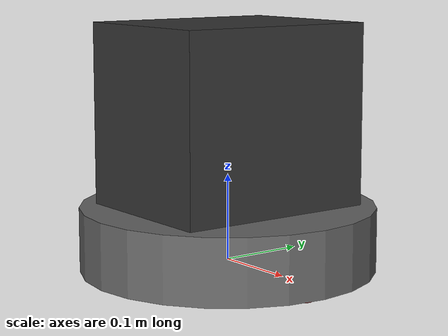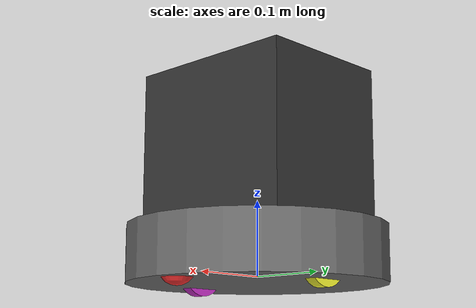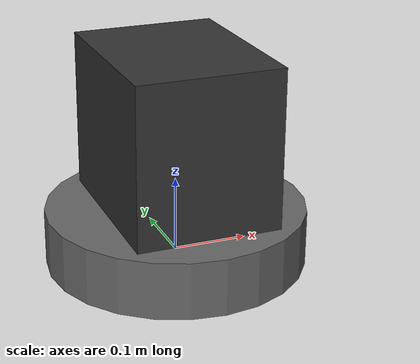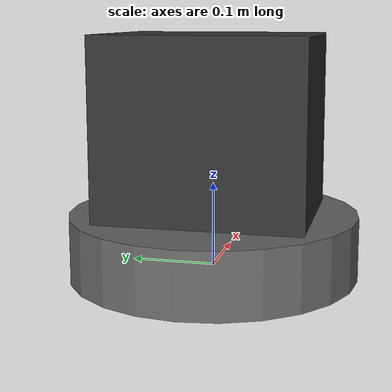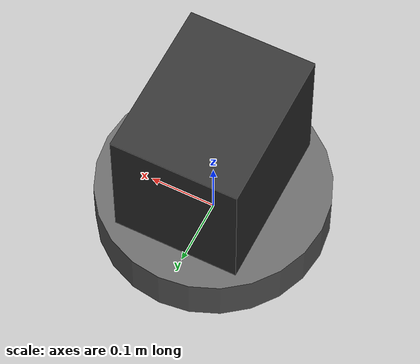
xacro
<?xml version="1.0"?>
<robot xmlns:xacro="http://www.ros.org/wiki/xacro">

<!-- Made by Ranil Ganlath: ranil.ganlath@gmail.com -->
<!-- This is the main urdf script for the Dark Passenger Payload mounted on a roomba chassis -->

  <!-- This makes inertia estimates easier -->
    <xacro:include filename="inertial_macros.xacro"/>

  <!-- Material Colors -->
    <material name="orange">
        <color rgba="${255/255} ${108/255} ${10/255} 1.0"/>
    </material>

    <material name="brown">
        <color rgba="${222/255} ${207/255} ${195/255} 1.0"/>
    </material>

    <material name="yellow">
        <color rgba="1 1 0.2 1" />
    </material>

    <material name="black">
        <color rgba="0.2 0.2 0.2 1" />
    </material>

    <material name="gray">
        <color rgba="0.4 0.4 0.4 1" />
    </material>

    <material name="white">
        <color rgba="0.7 0.7 0.7 1" />
    </material>

    <material name="blue">
        <color rgba="0.2 0.2 1 1" />
    </material>

    <material name="red">
        <color rgba="1 0.2 0.2 1" />
    </material>

    <material name="green">
        <color rgba="0.2 1 0.2 1" />
    </material>

    <material name="teal">
        <color rgba="0.2 0.8 1 1" />
    </material>

    <material name="magenta">
        <color rgba="0.8 0.2 0.8 1" />
    </material>

  <!-- XACRO Constants -->
    <xacro:property name="roomba_wheel_radius" value="0.035" />
    <xacro:property name="roomba_wheel_separation" value="0.218" />
    <xacro:property name="roomba_wheel_height_offset" value="0.01" />
    <xacro:property name="roomba_wheel_thickness" value="0.015" />
    <xacro:property name="roomba_wheel_weight" value="0.1" />
    <xacro:property name="caster_wheel_radius" value="0.024" />
    <xacro:property name="caster_wheel_weight" value="0.026" />
    <xacro:property name="caster_wheel_center_offset" value="0.14" />
    <xacro:property name="roomba_chassis_radius" value="0.17145" />
    <xacro:property name="roomba_chassis_height" value="0.075" />
    <xacro:property name="roomba_chassis_weight" value="1.81437" />

    <xacro:property name="payload_chassis_length" value="0.19" />
    <xacro:property name="payload_chassis_width" value="0.24" />
    <xacro:property name="payload_chassis_height" value="0.21" />
    <xacro:property name="payload_chassis_weight" value="3.4473" />

  <!-- Base Link (WORLD)-->
  <link name="base_link"></link>

 <!-- Roomba Chassis Link -->
    <joint name="roomba_chassis_joint" type="fixed">
        <parent link="base_link"/>
        <child link="roomba_chassis"/>
        <origin xyz="0 0 -${roomba_wheel_height_offset}" rpy="0 0 0"/>
    </joint>
    <link name="roomba_chassis">
        <visual>
            <origin xyz ="0 0 ${roomba_chassis_height/2}"/>
            <geometry>
                <cylinder radius="${roomba_chassis_radius}" length="${roomba_chassis_height}"/>
            </geometry>
            <material name="gray"/>
        </visual>
        <collision>
            <origin xyz ="0 0 ${roomba_chassis_height/2}"/>
            <geometry>
                <cylinder radius="${roomba_chassis_radius}" length="${roomba_chassis_height}"/>
            </geometry>
        </collision>
        <xacro:inertial_cylinder mass="${roomba_chassis_weight}" radius="${roomba_chassis_radius}" length="${roomba_chassis_height}">
            <origin xyz="0 0 ${roomba_chassis_height/2}" rpy= "0 0 0"/>
        </xacro:inertial_cylinder>
    </link>

    <gazebo reference="roomba_chassis">
        <material>Gazebo/White</material>
    </gazebo>

<!-- LEFT WHEEL Link -->
    <joint name="left_wheel_joint" type="continuous">
        <parent link="roomba_chassis"/>
        <child link="left_wheel"/>
        <origin xyz="0 ${roomba_wheel_separation/2} ${roomba_wheel_radius - roomba_wheel_height_offset}" rpy="-${pi/2} 0 0"/>
        <axis xyz="0 0 1"/>
    </joint>
    <link name="left_wheel">
        <visual>
            <geometry>
                <cylinder radius="${roomba_wheel_radius}" length="${roomba_wheel_thickness}"/>
            </geometry>
            <material name="yellow"/>
        </visual>
        <collision>
            <geometry>
                <sphere radius="${roomba_wheel_radius}"/>
            </geometry>
        </collision>
        <xacro:inertial_cylinder mass="${roomba_wheel_weight}" radius="${roomba_wheel_radius}" length="${roomba_wheel_thickness}">
            <origin xyz="0 0 0" rpy= "0 0 0"/>
        </xacro:inertial_cylinder>
    </link>
    <gazebo reference="left_wheel">
        <material>Gazebo/Blue</material>
    </gazebo>

<!-- RIGHT WHEEL Link -->
    <joint name="right_wheel_joint" type="continuous">
        <parent link="roomba_chassis"/>
        <child link="right_wheel"/>
        <origin xyz="0 -${roomba_wheel_separation/2} ${roomba_wheel_radius - roomba_wheel_height_offset}" rpy="${pi/2} 0 0"/>
        <axis xyz="0 0 -1"/>
    </joint>
    <link name="right_wheel">
        <visual>
            <geometry>
                <cylinder radius="${roomba_wheel_radius}" length="${roomba_wheel_thickness}"/>
            </geometry>
            <material name="magenta"/>
        </visual>
        <collision>
            <geometry>
                <sphere radius="${roomba_wheel_radius}"/>
            </geometry>
        </collision>
        <xacro:inertial_cylinder mass="${roomba_wheel_weight}" radius="${roomba_wheel_radius}" length="${roomba_wheel_thickness}">
            <origin xyz="0 0 0" rpy= "0 0 0"/>
        </xacro:inertial_cylinder>
    </link>
    <gazebo reference="right_wheel">
        <material>Gazebo/Red</material>
    </gazebo>

<!-- CASTER WHEEL Link -->
    <joint name="caster_wheel_joint" type="fixed">
        <parent link="roomba_chassis"/>
        <child link="caster_wheel"/>
        <origin xyz="${caster_wheel_center_offset} 0 ${caster_wheel_radius - roomba_wheel_height_offset}"/>
    </joint>
    <link name="caster_wheel">
        <visual>
            <geometry>
                <sphere radius="${caster_wheel_radius}"/>
            </geometry>
            <material name="red"/>
        </visual>
        <collision>
            <geometry>
                <sphere radius="${caster_wheel_radius}"/>
            </geometry>
        </collision>
        <xacro:inertial_sphere mass="${caster_wheel_weight}" radius="${caster_wheel_radius}">
            <origin xyz="0 0 0" rpy= "0 0 0"/>
        </xacro:inertial_sphere>
    </link>
    <gazebo reference="caster_wheel">
        <material>Gazebo/Blue</material>
        <mu1 value="0.001"/>
        <mu2 value="0.001"/>
    </gazebo>

 <!-- Payload Chassis Link -->
    <joint name="payload_chassis_joint" type="fixed">
        <parent link="roomba_chassis"/>
        <child link="payload_chassis"/>
        <origin xyz="-${payload_chassis_length/2} 0 ${roomba_chassis_height}" rpy="0 0 0"/>
    </joint>
    <link name="payload_chassis">
        <visual>
            <origin xyz ="${payload_chassis_length/2} 0 ${payload_chassis_height/2}"/>
            <geometry>
                <box size="${payload_chassis_length} ${payload_chassis_width} ${payload_chassis_height}"/>
            </geometry>
            <material name="black"/>
        </visual>
        <collision>
            <origin xyz ="${payload_chassis_length/2} 0 ${payload_chassis_height/2}"/>
            <geometry>
                <box size="${payload_chassis_length} ${payload_chassis_width} ${payload_chassis_height}"/>
            </geometry>
        </collision>
        <xacro:inertial_box mass ="${payload_chassis_weight}" x="${payload_chassis_length}" y="${payload_chassis_width}" z="${payload_chassis_height}">
            <origin xyz ="${payload_chassis_length/2} 0 ${payload_chassis_height/2}" rpy = "0 0 0"/>
        </xacro:inertial_box>
    </link>
    <gazebo reference="payload_chassis">
        <material>Gazebo/Green</material>
    </gazebo>

</robot>

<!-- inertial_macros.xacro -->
<robot xmlns:xacro="http://www.ros.org/wiki/xacro" >

<!-- Specify some standard inertial calculations https://en.wikipedia.org/wiki/List_of_moments_of_inertia -->
<!-- These make use of xacro's mathematical functionality -->

    <xacro:macro name="inertial_sphere" params="mass radius *origin">
        <inertial>
            <xacro:insert_block name="origin"/>
            <mass value="${mass}" />
            <inertia ixx="${(2/5) * mass * (radius*radius)}" ixy="0.0" ixz="0.0"
                    iyy="${(2/5) * mass * (radius*radius)}" iyz="0.0"
                    izz="${(2/5) * mass * (radius*radius)}" />
        </inertial>
    </xacro:macro>

    <xacro:macro name="inertial_box" params="mass x y z *origin">
        <inertial>
            <xacro:insert_block name="origin"/>
            <mass value="${mass}" />
            <inertia ixx="${(1/12) * mass * (y*y+z*z)}" ixy="0.0" ixz="0.0"
                    iyy="${(1/12) * mass * (x*x+z*z)}" iyz="0.0"
                    izz="${(1/12) * mass * (x*x+y*y)}" />
        </inertial>
    </xacro:macro>

    <xacro:macro name="inertial_cylinder" params="mass length radius *origin">
        <inertial>
            <xacro:insert_block name="origin"/>
            <mass value="${mass}" />
            <inertia ixx="${(1/12) * mass * (3*radius*radius + length*length)}" ixy="0.0" ixz="0.0"
                    iyy="${(1/12) * mass * (3*radius*radius + length*length)}" iyz="0.0"
                    izz="${(1/2) * mass * (radius*radius)}" />
        </inertial>
    </xacro:macro>

</robot>
